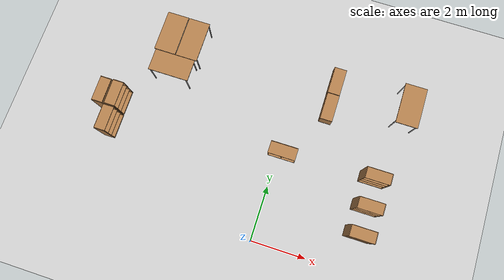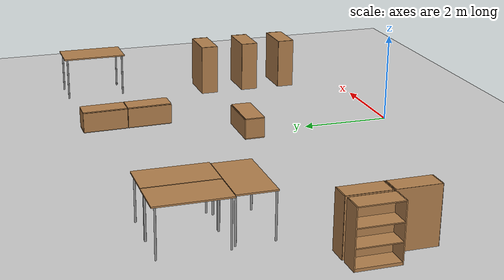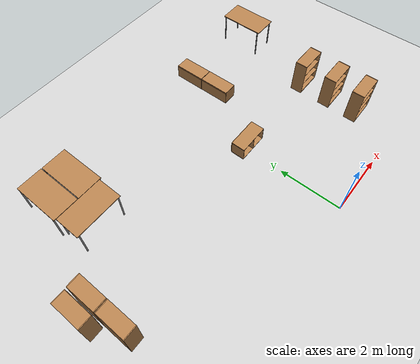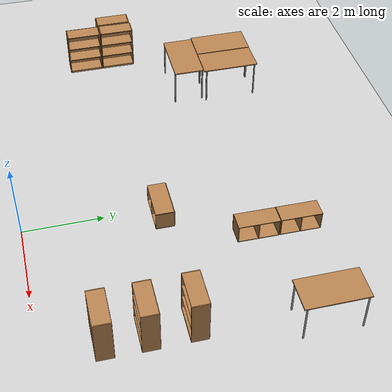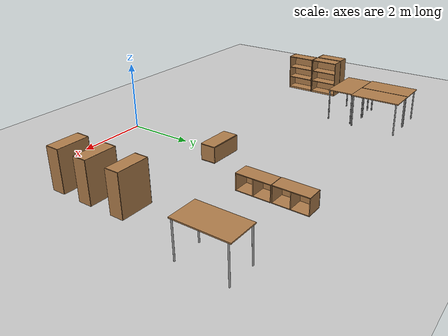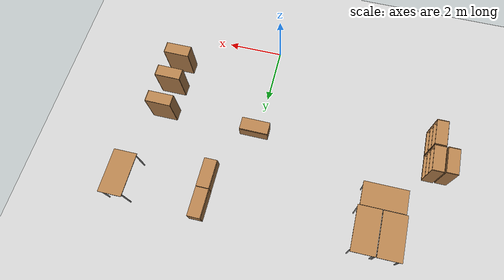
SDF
<sdf version="1.4">
 <world name="office">
  <model name="ground_plane">
   <static>1</static>
   <link name="link">
    <collision name="collision">
     <geometry><plane><normal>0 0 1</normal><size>100 100</size></plane></geometry>
     <surface><friction><ode><mu>100</mu><mu2>50</mu2></ode></friction></surface>
    </collision>
    <visual name="visual">
     <cast_shadows>0</cast_shadows>
     <geometry><plane><normal>0 0 1</normal><size>100 100</size></plane></geometry>
     <material>
      <script><uri>file://media/materials/scripts/gazebo.material</uri><name>Gazebo/Grey</name></script>
     </material>
    </visual>
    <velocity_decay><linear>0</linear><angular>0</angular></velocity_decay>
   </link>
  </model>
  <model name="cabinet_3">
   <static>1</static>
   <link name="cabinet_bottom_plate">
    <inertial>
     <pose>0 0 -1 0 -0 0</pose>
     <inertia><ixx>2.05</ixx><ixy>0</ixy><ixz>0</ixz><iyy>2.05</iyy><iyz>0</iyz><izz>2.05</izz></inertia>
     <mass>25</mass>
    </inertial>
    <collision name="cabinet_bottom_plate_geom">
     <pose>0 0 0.01 0 -0 0</pose>
     <geometry><box><size>0.45 0.45 0.02</size></box></geometry>
    </collision>
    <visual name="cabinet_bottom_plate_geom_visual">
     <pose>0 0 0.01 0 -0 0</pose>
     <geometry><box><size>0.45 0.45 0.02</size></box></geometry>
     <material>
      <script><uri>file://media/materials/scripts/gazebo.material</uri><name>Gazebo/Wood</name></script>
     </material>
    </visual>
    <collision name="cabinet_bottom_plate_geom_cabinet_back_plate">
     <pose>0.235 0 0.51 0 -0 0</pose>
     <geometry><box><size>0.02 0.45 1.02</size></box></geometry>
    </collision>
    <visual name="cabinet_bottom_plate_geom_cabinet_back_plate_visual">
     <pose>0.235 0 0.51 0 -0 0</pose>
     <geometry><box><size>0.02 0.45 1.02</size></box></geometry>
     <material>
      <script><uri>file://media/materials/scripts/gazebo.material</uri><name>Gazebo/Wood</name></script>
     </material>
    </visual>
    <collision name="cabinet_bottom_plate_geom_cabinet_left_plate">
     <pose>0 0.235 0.51 0 -0 0</pose>
     <geometry><box><size>0.45 0.02 1.02</size></box></geometry>
    </collision>
    <visual name="cabinet_bottom_plate_geom_cabinet_left_plate_visual">
     <pose>0 0.235 0.51 0 -0 0</pose>
     <geometry><box><size>0.45 0.02 1.02</size></box></geometry>
     <material>
      <script><uri>file://media/materials/scripts/gazebo.material</uri><name>Gazebo/Wood</name></script>
     </material>
    </visual>
    <collision name="cabinet_bottom_plate_geom_cabinet_middle_plate">
     <pose>0 0 0.51 0 -0 0</pose>
     <geometry><box><size>0.45 0.45 0.02</size></box></geometry>
    </collision>
    <visual name="cabinet_bottom_plate_geom_cabinet_middle_plate_visual">
     <pose>0 0 0.51 0 -0 0</pose>
     <geometry><box><size>0.45 0.45 0.02</size></box></geometry>
     <material>
      <script><uri>file://media/materials/scripts/gazebo.material</uri><name>Gazebo/Wood</name></script>
     </material>
    </visual>
    <collision name="cabinet_bottom_plate_geom_cabinet_right_plate">
     <pose>0 -0.235 0.51 0 -0 0</pose>
     <geometry><box><size>0.45 0.02 1.02</size></box></geometry>
    </collision>
    <visual name="cabinet_bottom_plate_geom_cabinet_right_plate_visual">
     <pose>0 -0.235 0.51 0 -0 0</pose>
     <geometry><box><size>0.45 0.02 1.02</size></box></geometry>
     <material>
      <script><uri>file://media/materials/scripts/gazebo.material</uri><name>Gazebo/Wood</name></script>
     </material>
    </visual>
    <collision name="cabinet_bottom_plate_geom_cabinet_top_plate">
     <pose>0 0 1.01 0 -0 0</pose>
     <geometry><box><size>0.45 0.45 0.02</size></box></geometry>
    </collision>
    <visual name="cabinet_bottom_plate_geom_cabinet_top_plate_visual">
     <pose>0 0 1.01 0 -0 0</pose>
     <geometry><box><size>0.45 0.45 0.02</size></box></geometry>
     <material>
      <script><uri>file://media/materials/scripts/gazebo.material</uri><name>Gazebo/Wood</name></script>
     </material>
    </visual>
    <velocity_decay><linear>0</linear><angular>0</angular></velocity_decay>
   </link>
   <pose>-0.367518 3.35954 0.24 1.56 5.55112e-17 1.5708</pose>
  </model>
  <model name="bookshelf_5">
   <static>1</static>
   <link name="link">
    <inertial><mass>1</mass></inertial>
    <collision name="back">
     <pose>0 0.005 0.6 0 -0 0</pose>
     <geometry><box><size>0.9 0.01 1.2</size></box></geometry>
    </collision>
    <visual name="visual1">
     <pose>0 0.005 0.6 0 -0 0</pose>
     <geometry><box><size>0.9 0.01 1.2</size></box></geometry>
     <material>
      <script><uri>file://media/materials/scripts/gazebo.material</uri><name>Gazebo/Wood</name></script>
     </material>
    </visual>
    <collision name="left_side">
     <pose>0.45 -0.195 0.6 0 -0 0</pose>
     <geometry><box><size>0.02 0.4 1.2</size></box></geometry>
    </collision>
    <visual name="visual2">
     <pose>0.45 -0.195 0.6 0 -0 0</pose>
     <geometry><box><size>0.02 0.4 1.2</size></box></geometry>
     <material>
      <script><uri>file://media/materials/scripts/gazebo.material</uri><name>Gazebo/Wood</name></script>
     </material>
    </visual>
    <collision name="right_side">
     <pose>-0.45 -0.195 0.6 0 -0 0</pose>
     <geometry><box><size>0.02 0.4 1.2</size></box></geometry>
    </collision>
    <visual name="visual3">
     <pose>-0.45 -0.195 0.6 0 -0 0</pose>
     <geometry><box><size>0.02 0.4 1.2</size></box></geometry>
     <material>
      <script><uri>file://media/materials/scripts/gazebo.material</uri><name>Gazebo/Wood</name></script>
     </material>
    </visual>
    <collision name="bottom">
     <pose>0 -0.195 0.03 0 -0 0</pose>
     <geometry><box><size>0.88 0.4 0.06</size></box></geometry>
    </collision>
    <visual name="visual4">
     <pose>0 -0.195 0.03 0 -0 0</pose>
     <geometry><box><size>0.88 0.4 0.06</size></box></geometry>
     <material>
      <script><uri>file://media/materials/scripts/gazebo.material</uri><name>Gazebo/Wood</name></script>
     </material>
    </visual>
    <collision name="top">
     <pose>0 -0.195 1.19 0 -0 0</pose>
     <geometry><box><size>0.88 0.4 0.02</size></box></geometry>
    </collision>
    <visual name="visual5">
     <pose>0 -0.195 1.19 0 -0 0</pose>
     <geometry><box><size>0.88 0.4 0.02</size></box></geometry>
     <material>
      <script><uri>file://media/materials/scripts/gazebo.material</uri><name>Gazebo/Wood</name></script>
     </material>
    </visual>
    <collision name="low_shelf">
     <pose>0 -0.195 0.43 0 -0 0</pose>
     <geometry><box><size>0.88 0.4 0.02</size></box></geometry>
    </collision>
    <visual name="visual6">
     <pose>0 -0.195 0.43 0 -0 0</pose>
     <geometry><box><size>0.88 0.4 0.02</size></box></geometry>
     <material>
      <script><uri>file://media/materials/scripts/gazebo.material</uri><name>Gazebo/Wood</name></script>
     </material>
    </visual>
    <collision name="high_shelf">
     <pose>0 -0.195 0.8 0 -0 0</pose>
     <geometry><box><size>0.88 0.4 0.02</size></box></geometry>
    </collision>
    <visual name="visual7">
     <pose>0 -0.195 0.8 0 -0 0</pose>
     <geometry><box><size>0.88 0.4 0.02</size></box></geometry>
     <material>
      <script><uri>file://media/materials/scripts/gazebo.material</uri><name>Gazebo/Wood</name></script>
     </material>
    </visual>
    <velocity_decay><linear>0</linear><angular>0</angular></velocity_decay>
   </link>
   <pose>-6.34031 2.45987 0 0 -0 1.5708</pose>
  </model>
  <model name="bookshelf_7">
   <static>1</static>
   <link name="link">
    <inertial><mass>1</mass></inertial>
    <collision name="back">
     <pose>0 0.005 0.6 0 -0 0</pose>
     <geometry><box><size>0.9 0.01 1.2</size></box></geometry>
    </collision>
    <visual name="visual1">
     <pose>0 0.005 0.6 0 -0 0</pose>
     <geometry><box><size>0.9 0.01 1.2</size></box></geometry>
     <material>
      <script><uri>file://media/materials/scripts/gazebo.material</uri><name>Gazebo/Wood</name></script>
     </material>
    </visual>
    <collision name="left_side">
     <pose>0.45 -0.195 0.6 0 -0 0</pose>
     <geometry><box><size>0.02 0.4 1.2</size></box></geometry>
    </collision>
    <visual name="visual2">
     <pose>0.45 -0.195 0.6 0 -0 0</pose>
     <geometry><box><size>0.02 0.4 1.2</size></box></geometry>
     <material>
      <script><uri>file://media/materials/scripts/gazebo.material</uri><name>Gazebo/Wood</name></script>
     </material>
    </visual>
    <collision name="right_side">
     <pose>-0.45 -0.195 0.6 0 -0 0</pose>
     <geometry><box><size>0.02 0.4 1.2</size></box></geometry>
    </collision>
    <visual name="visual3">
     <pose>-0.45 -0.195 0.6 0 -0 0</pose>
     <geometry><box><size>0.02 0.4 1.2</size></box></geometry>
     <material>
      <script><uri>file://media/materials/scripts/gazebo.material</uri><name>Gazebo/Wood</name></script>
     </material>
    </visual>
    <collision name="bottom">
     <pose>0 -0.195 0.03 0 -0 0</pose>
     <geometry><box><size>0.88 0.4 0.06</size></box></geometry>
    </collision>
    <visual name="visual4">
     <pose>0 -0.195 0.03 0 -0 0</pose>
     <geometry><box><size>0.88 0.4 0.06</size></box></geometry>
     <material>
      <script><uri>file://media/materials/scripts/gazebo.material</uri><name>Gazebo/Wood</name></script>
     </material>
    </visual>
    <collision name="top">
     <pose>0 -0.195 1.19 0 -0 0</pose>
     <geometry><box><size>0.88 0.4 0.02</size></box></geometry>
    </collision>
    <visual name="visual5">
     <pose>0 -0.195 1.19 0 -0 0</pose>
     <geometry><box><size>0.88 0.4 0.02</size></box></geometry>
     <material>
      <script><uri>file://media/materials/scripts/gazebo.material</uri><name>Gazebo/Wood</name></script>
     </material>
    </visual>
    <collision name="low_shelf">
     <pose>0 -0.195 0.43 0 -0 0</pose>
     <geometry><box><size>0.88 0.4 0.02</size></box></geometry>
    </collision>
    <visual name="visual6">
     <pose>0 -0.195 0.43 0 -0 0</pose>
     <geometry><box><size>0.88 0.4 0.02</size></box></geometry>
     <material>
      <script><uri>file://media/materials/scripts/gazebo.material</uri><name>Gazebo/Wood</name></script>
     </material>
    </visual>
    <collision name="high_shelf">
     <pose>0 -0.195 0.8 0 -0 0</pose>
     <geometry><box><size>0.88 0.4 0.02</size></box></geometry>
    </collision>
    <visual name="visual7">
     <pose>0 -0.195 0.8 0 -0 0</pose>
     <geometry><box><size>0.88 0.4 0.02</size></box></geometry>
     <material>
      <script><uri>file://media/materials/scripts/gazebo.material</uri><name>Gazebo/Wood</name></script>
     </material>
    </visual>
    <velocity_decay><linear>0</linear><angular>0</angular></velocity_decay>
   </link>
   <pose>-6.34296 3.39405 0 0 -0 1.5708</pose>
  </model>
  <model name="bookshelf_9">
   <static>1</static>
   <link name="link">
    <inertial><mass>1</mass></inertial>
    <collision name="back">
     <pose>0 0.005 0.6 0 -0 0</pose>
     <geometry><box><size>0.9 0.01 1.2</size></box></geometry>
    </collision>
    <visual name="visual1">
     <pose>0 0.005 0.6 0 -0 0</pose>
     <geometry><box><size>0.9 0.01 1.2</size></box></geometry>
     <material>
      <script><uri>file://media/materials/scripts/gazebo.material</uri><name>Gazebo/Wood</name></script>
     </material>
    </visual>
    <collision name="left_side">
     <pose>0.45 -0.195 0.6 0 -0 0</pose>
     <geometry><box><size>0.02 0.4 1.2</size></box></geometry>
    </collision>
    <visual name="visual2">
     <pose>0.45 -0.195 0.6 0 -0 0</pose>
     <geometry><box><size>0.02 0.4 1.2</size></box></geometry>
     <material>
      <script><uri>file://media/materials/scripts/gazebo.material</uri><name>Gazebo/Wood</name></script>
     </material>
    </visual>
    <collision name="right_side">
     <pose>-0.45 -0.195 0.6 0 -0 0</pose>
     <geometry><box><size>0.02 0.4 1.2</size></box></geometry>
    </collision>
    <visual name="visual3">
     <pose>-0.45 -0.195 0.6 0 -0 0</pose>
     <geometry><box><size>0.02 0.4 1.2</size></box></geometry>
     <material>
      <script><uri>file://media/materials/scripts/gazebo.material</uri><name>Gazebo/Wood</name></script>
     </material>
    </visual>
    <collision name="bottom">
     <pose>0 -0.195 0.03 0 -0 0</pose>
     <geometry><box><size>0.88 0.4 0.06</size></box></geometry>
    </collision>
    <visual name="visual4">
     <pose>0 -0.195 0.03 0 -0 0</pose>
     <geometry><box><size>0.88 0.4 0.06</size></box></geometry>
     <material>
      <script><uri>file://media/materials/scripts/gazebo.material</uri><name>Gazebo/Wood</name></script>
     </material>
    </visual>
    <collision name="top">
     <pose>0 -0.195 1.19 0 -0 0</pose>
     <geometry><box><size>0.88 0.4 0.02</size></box></geometry>
    </collision>
    <visual name="visual5">
     <pose>0 -0.195 1.19 0 -0 0</pose>
     <geometry><box><size>0.88 0.4 0.02</size></box></geometry>
     <material>
      <script><uri>file://media/materials/scripts/gazebo.material</uri><name>Gazebo/Wood</name></script>
     </material>
    </visual>
    <collision name="low_shelf">
     <pose>0 -0.195 0.43 0 -0 0</pose>
     <geometry><box><size>0.88 0.4 0.02</size></box></geometry>
    </collision>
    <visual name="visual6">
     <pose>0 -0.195 0.43 0 -0 0</pose>
     <geometry><box><size>0.88 0.4 0.02</size></box></geometry>
     <material>
      <script><uri>file://media/materials/scripts/gazebo.material</uri><name>Gazebo/Wood</name></script>
     </material>
    </visual>
    <collision name="high_shelf">
     <pose>0 -0.195 0.8 0 -0 0</pose>
     <geometry><box><size>0.88 0.4 0.02</size></box></geometry>
    </collision>
    <visual name="visual7">
     <pose>0 -0.195 0.8 0 -0 0</pose>
     <geometry><box><size>0.88 0.4 0.02</size></box></geometry>
     <material>
      <script><uri>file://media/materials/scripts/gazebo.material</uri><name>Gazebo/Wood</name></script>
     </material>
    </visual>
    <velocity_decay><linear>0</linear><angular>0</angular></velocity_decay>
   </link>
   <pose>3.50074 3.59039 0 0 -0 0</pose>
  </model>
  <model name="bookshelf_10">
   <static>1</static>
   <link name="link">
    <inertial><mass>1</mass></inertial>
    <collision name="back">
     <pose>0 0.005 0.6 0 -0 0</pose>
     <geometry><box><size>0.9 0.01 1.2</size></box></geometry>
    </collision>
    <visual name="visual1">
     <pose>0 0.005 0.6 0 -0 0</pose>
     <geometry><box><size>0.9 0.01 1.2</size></box></geometry>
     <material>
      <script><uri>file://media/materials/scripts/gazebo.material</uri><name>Gazebo/Wood</name></script>
     </material>
    </visual>
    <collision name="left_side">
     <pose>0.45 -0.195 0.6 0 -0 0</pose>
     <geometry><box><size>0.02 0.4 1.2</size></box></geometry>
    </collision>
    <visual name="visual2">
     <pose>0.45 -0.195 0.6 0 -0 0</pose>
     <geometry><box><size>0.02 0.4 1.2</size></box></geometry>
     <material>
      <script><uri>file://media/materials/scripts/gazebo.material</uri><name>Gazebo/Wood</name></script>
     </material>
    </visual>
    <collision name="right_side">
     <pose>-0.45 -0.195 0.6 0 -0 0</pose>
     <geometry><box><size>0.02 0.4 1.2</size></box></geometry>
    </collision>
    <visual name="visual3">
     <pose>-0.45 -0.195 0.6 0 -0 0</pose>
     <geometry><box><size>0.02 0.4 1.2</size></box></geometry>
     <material>
      <script><uri>file://media/materials/scripts/gazebo.material</uri><name>Gazebo/Wood</name></script>
     </material>
    </visual>
    <collision name="bottom">
     <pose>0 -0.195 0.03 0 -0 0</pose>
     <geometry><box><size>0.88 0.4 0.06</size></box></geometry>
    </collision>
    <visual name="visual4">
     <pose>0 -0.195 0.03 0 -0 0</pose>
     <geometry><box><size>0.88 0.4 0.06</size></box></geometry>
     <material>
      <script><uri>file://media/materials/scripts/gazebo.material</uri><name>Gazebo/Wood</name></script>
     </material>
    </visual>
    <collision name="top">
     <pose>0 -0.195 1.19 0 -0 0</pose>
     <geometry><box><size>0.88 0.4 0.02</size></box></geometry>
    </collision>
    <visual name="visual5">
     <pose>0 -0.195 1.19 0 -0 0</pose>
     <geometry><box><size>0.88 0.4 0.02</size></box></geometry>
     <material>
      <script><uri>file://media/materials/scripts/gazebo.material</uri><name>Gazebo/Wood</name></script>
     </material>
    </visual>
    <collision name="low_shelf">
     <pose>0 -0.195 0.43 0 -0 0</pose>
     <geometry><box><size>0.88 0.4 0.02</size></box></geometry>
    </collision>
    <visual name="visual6">
     <pose>0 -0.195 0.43 0 -0 0</pose>
     <geometry><box><size>0.88 0.4 0.02</size></box></geometry>
     <material>
      <script><uri>file://media/materials/scripts/gazebo.material</uri><name>Gazebo/Wood</name></script>
     </material>
    </visual>
    <collision name="high_shelf">
     <pose>0 -0.195 0.8 0 -0 0</pose>
     <geometry><box><size>0.88 0.4 0.02</size></box></geometry>
    </collision>
    <visual name="visual7">
     <pose>0 -0.195 0.8 0 -0 0</pose>
     <geometry><box><size>0.88 0.4 0.02</size></box></geometry>
     <material>
      <script><uri>file://media/materials/scripts/gazebo.material</uri><name>Gazebo/Wood</name></script>
     </material>
    </visual>
    <velocity_decay><linear>0</linear><angular>0</angular></velocity_decay>
   </link>
   <pose>3.50768 2.53773 0 0 -0 0</pose>
  </model>
  <model name="bookshelf_11">
   <static>1</static>
   <link name="link">
    <inertial><mass>1</mass></inertial>
    <collision name="back">
     <pose>0 0.005 0.6 0 -0 0</pose>
     <geometry><box><size>0.9 0.01 1.2</size></box></geometry>
    </collision>
    <visual name="visual1">
     <pose>0 0.005 0.6 0 -0 0</pose>
     <geometry><box><size>0.9 0.01 1.2</size></box></geometry>
     <material>
      <script><uri>file://media/materials/scripts/gazebo.material</uri><name>Gazebo/Wood</name></script>
     </material>
    </visual>
    <collision name="left_side">
     <pose>0.45 -0.195 0.6 0 -0 0</pose>
     <geometry><box><size>0.02 0.4 1.2</size></box></geometry>
    </collision>
    <visual name="visual2">
     <pose>0.45 -0.195 0.6 0 -0 0</pose>
     <geometry><box><size>0.02 0.4 1.2</size></box></geometry>
     <material>
      <script><uri>file://media/materials/scripts/gazebo.material</uri><name>Gazebo/Wood</name></script>
     </material>
    </visual>
    <collision name="right_side">
     <pose>-0.45 -0.195 0.6 0 -0 0</pose>
     <geometry><box><size>0.02 0.4 1.2</size></box></geometry>
    </collision>
    <visual name="visual3">
     <pose>-0.45 -0.195 0.6 0 -0 0</pose>
     <geometry><box><size>0.02 0.4 1.2</size></box></geometry>
     <material>
      <script><uri>file://media/materials/scripts/gazebo.material</uri><name>Gazebo/Wood</name></script>
     </material>
    </visual>
    <collision name="bottom">
     <pose>0 -0.195 0.03 0 -0 0</pose>
     <geometry><box><size>0.88 0.4 0.06</size></box></geometry>
    </collision>
    <visual name="visual4">
     <pose>0 -0.195 0.03 0 -0 0</pose>
     <geometry><box><size>0.88 0.4 0.06</size></box></geometry>
     <material>
      <script><uri>file://media/materials/scripts/gazebo.material</uri><name>Gazebo/Wood</name></script>
     </material>
    </visual>
    <collision name="top">
     <pose>0 -0.195 1.19 0 -0 0</pose>
     <geometry><box><size>0.88 0.4 0.02</size></box></geometry>
    </collision>
    <visual name="visual5">
     <pose>0 -0.195 1.19 0 -0 0</pose>
     <geometry><box><size>0.88 0.4 0.02</size></box></geometry>
     <material>
      <script><uri>file://media/materials/scripts/gazebo.material</uri><name>Gazebo/Wood</name></script>
     </material>
    </visual>
    <collision name="low_shelf">
     <pose>0 -0.195 0.43 0 -0 0</pose>
     <geometry><box><size>0.88 0.4 0.02</size></box></geometry>
    </collision>
    <visual name="visual6">
     <pose>0 -0.195 0.43 0 -0 0</pose>
     <geometry><box><size>0.88 0.4 0.02</size></box></geometry>
     <material>
      <script><uri>file://media/materials/scripts/gazebo.material</uri><name>Gazebo/Wood</name></script>
     </material>
    </visual>
    <collision name="high_shelf">
     <pose>0 -0.195 0.8 0 -0 0</pose>
     <geometry><box><size>0.88 0.4 0.02</size></box></geometry>
    </collision>
    <visual name="visual7">
     <pose>0 -0.195 0.8 0 -0 0</pose>
     <geometry><box><size>0.88 0.4 0.02</size></box></geometry>
     <material>
      <script><uri>file://media/materials/scripts/gazebo.material</uri><name>Gazebo/Wood</name></script>
     </material>
    </visual>
    <velocity_decay><linear>0</linear><angular>0</angular></velocity_decay>
   </link>
   <pose>3.49876 1.56425 0 0 -0 0</pose>
  </model>
  <model name="cabinet_6">
   <static>1</static>
   <link name="cabinet_bottom_plate">
    <inertial>
     <pose>0 0 -1 0 -0 0</pose>
     <inertia><ixx>2.05</ixx><ixy>0</ixy><ixz>0</ixz><iyy>2.05</iyy><iyz>0</iyz><izz>2.05</izz></inertia>
     <mass>25</mass>
    </inertial>
    <collision name="cabinet_bottom_plate_geom">
     <pose>0 0 0.01 0 -0 0</pose>
     <geometry><box><size>0.45 0.45 0.02</size></box></geometry>
    </collision>
    <visual name="cabinet_bottom_plate_geom_visual">
     <pose>0 0 0.01 0 -0 0</pose>
     <geometry><box><size>0.45 0.45 0.02</size></box></geometry>
     <material>
      <script><uri>file://media/materials/scripts/gazebo.material</uri><name>Gazebo/Wood</name></script>
     </material>
    </visual>
    <collision name="cabinet_bottom_plate_geom_cabinet_back_plate">
     <pose>0.235 0 0.51 0 -0 0</pose>
     <geometry><box><size>0.02 0.45 1.02</size></box></geometry>
    </collision>
    <visual name="cabinet_bottom_plate_geom_cabinet_back_plate_visual">
     <pose>0.235 0 0.51 0 -0 0</pose>
     <geometry><box><size>0.02 0.45 1.02</size></box></geometry>
     <material>
      <script><uri>file://media/materials/scripts/gazebo.material</uri><name>Gazebo/Wood</name></script>
     </material>
    </visual>
    <collision name="cabinet_bottom_plate_geom_cabinet_left_plate">
     <pose>0 0.235 0.51 0 -0 0</pose>
     <geometry><box><size>0.45 0.02 1.02</size></box></geometry>
    </collision>
    <visual name="cabinet_bottom_plate_geom_cabinet_left_plate_visual">
     <pose>0 0.235 0.51 0 -0 0</pose>
     <geometry><box><size>0.45 0.02 1.02</size></box></geometry>
     <material>
      <script><uri>file://media/materials/scripts/gazebo.material</uri><name>Gazebo/Wood</name></script>
     </material>
    </visual>
    <collision name="cabinet_bottom_plate_geom_cabinet_middle_plate">
     <pose>0 0 0.51 0 -0 0</pose>
     <geometry><box><size>0.45 0.45 0.02</size></box></geometry>
    </collision>
    <visual name="cabinet_bottom_plate_geom_cabinet_middle_plate_visual">
     <pose>0 0 0.51 0 -0 0</pose>
     <geometry><box><size>0.45 0.45 0.02</size></box></geometry>
     <material>
      <script><uri>file://media/materials/scripts/gazebo.material</uri><name>Gazebo/Wood</name></script>
     </material>
    </visual>
    <collision name="cabinet_bottom_plate_geom_cabinet_right_plate">
     <pose>0 -0.235 0.51 0 -0 0</pose>
     <geometry><box><size>0.45 0.02 1.02</size></box></geometry>
    </collision>
    <visual name="cabinet_bottom_plate_geom_cabinet_right_plate_visual">
     <pose>0 -0.235 0.51 0 -0 0</pose>
     <geometry><box><size>0.45 0.02 1.02</size></box></geometry>
     <material>
      <script><uri>file://media/materials/scripts/gazebo.material</uri><name>Gazebo/Wood</name></script>
     </material>
    </visual>
    <collision name="cabinet_bottom_plate_geom_cabinet_top_plate">
     <pose>0 0 1.01 0 -0 0</pose>
     <geometry><box><size>0.45 0.45 0.02</size></box></geometry>
    </collision>
    <visual name="cabinet_bottom_plate_geom_cabinet_top_plate_visual">
     <pose>0 0 1.01 0 -0 0</pose>
     <geometry><box><size>0.45 0.45 0.02</size></box></geometry>
     <material>
      <script><uri>file://media/materials/scripts/gazebo.material</uri><name>Gazebo/Wood</name></script>
     </material>
    </visual>
    <velocity_decay><linear>0</linear><angular>0</angular></velocity_decay>
   </link>
   <pose>1.29334 5.93491 0.26 -1.56 4.23516e-22 -3.14159</pose>
  </model>
  <model name="cabinet_7">
   <static>1</static>
   <link name="cabinet_bottom_plate">
    <inertial>
     <pose>0 0 -1 0 -0 0</pose>
     <inertia><ixx>2.05</ixx><ixy>0</ixy><ixz>0</ixz><iyy>2.05</iyy><iyz>0</iyz><izz>2.05</izz></inertia>
     <mass>25</mass>
    </inertial>
    <collision name="cabinet_bottom_plate_geom">
     <pose>0 0 0.01 0 -0 0</pose>
     <geometry><box><size>0.45 0.45 0.02</size></box></geometry>
    </collision>
    <visual name="cabinet_bottom_plate_geom_visual">
     <pose>0 0 0.01 0 -0 0</pose>
     <geometry><box><size>0.45 0.45 0.02</size></box></geometry>
     <material>
      <script><uri>file://media/materials/scripts/gazebo.material</uri><name>Gazebo/Wood</name></script>
     </material>
    </visual>
    <collision name="cabinet_bottom_plate_geom_cabinet_back_plate">
     <pose>0.235 0 0.51 0 -0 0</pose>
     <geometry><box><size>0.02 0.45 1.02</size></box></geometry>
    </collision>
    <visual name="cabinet_bottom_plate_geom_cabinet_back_plate_visual">
     <pose>0.235 0 0.51 0 -0 0</pose>
     <geometry><box><size>0.02 0.45 1.02</size></box></geometry>
     <material>
      <script><uri>file://media/materials/scripts/gazebo.material</uri><name>Gazebo/Wood</name></script>
     </material>
    </visual>
    <collision name="cabinet_bottom_plate_geom_cabinet_left_plate">
     <pose>0 0.235 0.51 0 -0 0</pose>
     <geometry><box><size>0.45 0.02 1.02</size></box></geometry>
    </collision>
    <visual name="cabinet_bottom_plate_geom_cabinet_left_plate_visual">
     <pose>0 0.235 0.51 0 -0 0</pose>
     <geometry><box><size>0.45 0.02 1.02</size></box></geometry>
     <material>
      <script><uri>file://media/materials/scripts/gazebo.material</uri><name>Gazebo/Wood</name></script>
     </material>
    </visual>
    <collision name="cabinet_bottom_plate_geom_cabinet_middle_plate">
     <pose>0 0 0.51 0 -0 0</pose>
     <geometry><box><size>0.45 0.45 0.02</size></box></geometry>
    </collision>
    <visual name="cabinet_bottom_plate_geom_cabinet_middle_plate_visual">
     <pose>0 0 0.51 0 -0 0</pose>
     <geometry><box><size>0.45 0.45 0.02</size></box></geometry>
     <material>
      <script><uri>file://media/materials/scripts/gazebo.material</uri><name>Gazebo/Wood</name></script>
     </material>
    </visual>
    <collision name="cabinet_bottom_plate_geom_cabinet_right_plate">
     <pose>0 -0.235 0.51 0 -0 0</pose>
     <geometry><box><size>0.45 0.02 1.02</size></box></geometry>
    </collision>
    <visual name="cabinet_bottom_plate_geom_cabinet_right_plate_visual">
     <pose>0 -0.235 0.51 0 -0 0</pose>
     <geometry><box><size>0.45 0.02 1.02</size></box></geometry>
     <material>
      <script><uri>file://media/materials/scripts/gazebo.material</uri><name>Gazebo/Wood</name></script>
     </material>
    </visual>
    <collision name="cabinet_bottom_plate_geom_cabinet_top_plate">
     <pose>0 0 1.01 0 -0 0</pose>
     <geometry><box><size>0.45 0.45 0.02</size></box></geometry>
    </collision>
    <visual name="cabinet_bottom_plate_geom_cabinet_top_plate_visual">
     <pose>0 0 1.01 0 -0 0</pose>
     <geometry><box><size>0.45 0.45 0.02</size></box></geometry>
     <material>
      <script><uri>file://media/materials/scripts/gazebo.material</uri><name>Gazebo/Wood</name></script>
     </material>
    </visual>
    <velocity_decay><linear>0</linear><angular>0</angular></velocity_decay>
   </link>
   <pose>1.28862 6.97136 0.25 -1.56 4.23516e-22 -3.14159</pose>
  </model>
  <model name="bookshelf_13">
   <static>1</static>
   <link name="link">
    <inertial><mass>1</mass></inertial>
    <collision name="back">
     <pose>0 0.005 0.6 0 -0 0</pose>
     <geometry><box><size>0.9 0.01 1.2</size></box></geometry>
    </collision>
    <visual name="visual1">
     <pose>0 0.005 0.6 0 -0 0</pose>
     <geometry><box><size>0.9 0.01 1.2</size></box></geometry>
     <material>
      <script><uri>file://media/materials/scripts/gazebo.material</uri><name>Gazebo/Wood</name></script>
     </material>
    </visual>
    <collision name="left_side">
     <pose>0.45 -0.195 0.6 0 -0 0</pose>
     <geometry><box><size>0.02 0.4 1.2</size></box></geometry>
    </collision>
    <visual name="visual2">
     <pose>0.45 -0.195 0.6 0 -0 0</pose>
     <geometry><box><size>0.02 0.4 1.2</size></box></geometry>
     <material>
      <script><uri>file://media/materials/scripts/gazebo.material</uri><name>Gazebo/Wood</name></script>
     </material>
    </visual>
    <collision name="right_side">
     <pose>-0.45 -0.195 0.6 0 -0 0</pose>
     <geometry><box><size>0.02 0.4 1.2</size></box></geometry>
    </collision>
    <visual name="visual3">
     <pose>-0.45 -0.195 0.6 0 -0 0</pose>
     <geometry><box><size>0.02 0.4 1.2</size></box></geometry>
     <material>
      <script><uri>file://media/materials/scripts/gazebo.material</uri><name>Gazebo/Wood</name></script>
     </material>
    </visual>
    <collision name="bottom">
     <pose>0 -0.195 0.03 0 -0 0</pose>
     <geometry><box><size>0.88 0.4 0.06</size></box></geometry>
    </collision>
    <visual name="visual4">
     <pose>0 -0.195 0.03 0 -0 0</pose>
     <geometry><box><size>0.88 0.4 0.06</size></box></geometry>
     <material>
      <script><uri>file://media/materials/scripts/gazebo.material</uri><name>Gazebo/Wood</name></script>
     </material>
    </visual>
    <collision name="top">
     <pose>0 -0.195 1.19 0 -0 0</pose>
     <geometry><box><size>0.88 0.4 0.02</size></box></geometry>
    </collision>
    <visual name="visual5">
     <pose>0 -0.195 1.19 0 -0 0</pose>
     <geometry><box><size>0.88 0.4 0.02</size></box></geometry>
     <material>
      <script><uri>file://media/materials/scripts/gazebo.material</uri><name>Gazebo/Wood</name></script>
     </material>
    </visual>
    <collision name="low_shelf">
     <pose>0 -0.195 0.43 0 -0 0</pose>
     <geometry><box><size>0.88 0.4 0.02</size></box></geometry>
    </collision>
    <visual name="visual6">
     <pose>0 -0.195 0.43 0 -0 0</pose>
     <geometry><box><size>0.88 0.4 0.02</size></box></geometry>
     <material>
      <script><uri>file://media/materials/scripts/gazebo.material</uri><name>Gazebo/Wood</name></script>
     </material>
    </visual>
    <collision name="high_shelf">
     <pose>0 -0.195 0.8 0 -0 0</pose>
     <geometry><box><size>0.88 0.4 0.02</size></box></geometry>
    </collision>
    <visual name="visual7">
     <pose>0 -0.195 0.8 0 -0 0</pose>
     <geometry><box><size>0.88 0.4 0.02</size></box></geometry>
     <material>
      <script><uri>file://media/materials/scripts/gazebo.material</uri><name>Gazebo/Wood</name></script>
     </material>
    </visual>
    <velocity_decay><linear>0</linear><angular>0</angular></velocity_decay>
   </link>
   <pose>-6.41358 3.37736 0 0 0 -1.5708</pose>
  </model>
  <model name="table_12">
   <static>1</static>
   <link name="link">
    <collision name="surface">
     <pose>0 0 1 0 -0 0</pose>
     <geometry><box><size>1.5 0.8 0.03</size></box></geometry>
    </collision>
    <visual name="visual1">
     <pose>0 0 1 0 -0 0</pose>
     <geometry><box><size>1.5 0.8 0.03</size></box></geometry>
     <material>
      <script><uri>file://media/materials/scripts/gazebo.material</uri><name>Gazebo/Wood</name></script>
     </material>
    </visual>
    <collision name="front_left_leg">
     <pose>0.68 0.38 0.5 0 -0 0</pose>
     <geometry><cylinder><radius>0.02</radius><length>1</length></cylinder></geometry>
    </collision>
    <visual name="front_left_leg">
     <pose>0.68 0.38 0.5 0 -0 0</pose>
     <geometry><cylinder><radius>0.02</radius><length>1</length></cylinder></geometry>
     <material>
      <script><uri>file://media/materials/scripts/gazebo.material</uri><name>Gazebo/Grey</name></script>
     </material>
    </visual>
    <collision name="front_right_leg">
     <pose>0.68 -0.38 0.5 0 -0 0</pose>
     <geometry><cylinder><radius>0.02</radius><length>1</length></cylinder></geometry>
    </collision>
    <visual name="front_right_leg">
     <pose>0.68 -0.38 0.5 0 -0 0</pose>
     <geometry><cylinder><radius>0.02</radius><length>1</length></cylinder></geometry>
     <material>
      <script><uri>file://media/materials/scripts/gazebo.material</uri><name>Gazebo/Grey</name></script>
     </material>
    </visual>
    <collision name="back_right_leg">
     <pose>-0.68 -0.38 0.5 0 -0 0</pose>
     <geometry><cylinder><radius>0.02</radius><length>1</length></cylinder></geometry>
    </collision>
    <visual name="back_right_leg">
     <pose>-0.68 -0.38 0.5 0 -0 0</pose>
     <geometry><cylinder><radius>0.02</radius><length>1</length></cylinder></geometry>
     <material>
      <script><uri>file://media/materials/scripts/gazebo.material</uri><name>Gazebo/Grey</name></script>
     </material>
    </visual>
    <collision name="back_left_leg">
     <pose>-0.68 0.38 0.5 0 -0 0</pose>
     <geometry><cylinder><radius>0.02</radius><length>1</length></cylinder></geometry>
    </collision>
    <visual name="back_left_leg">
     <pose>-0.68 0.38 0.5 0 -0 0</pose>
     <geometry><cylinder><radius>0.02</radius><length>1</length></cylinder></geometry>
     <material>
      <script><uri>file://media/materials/scripts/gazebo.material</uri><name>Gazebo/Grey</name></script>
     </material>
    </visual>
    <velocity_decay><linear>0</linear><angular>0</angular></velocity_decay>
   </link>
   <pose>4.01103 6.20197 0 0 0 -1.5708</pose>
  </model>
  <model name="table_16">
   <static>1</static>
   <link name="link">
    <collision name="surface">
     <pose>0 0 1 0 -0 0</pose>
     <geometry><box><size>1.5 0.8 0.03</size></box></geometry>
    </collision>
    <visual name="visual1">
     <pose>0 0 1 0 -0 0</pose>
     <geometry><box><size>1.5 0.8 0.03</size></box></geometry>
     <material>
      <script><uri>file://media/materials/scripts/gazebo.material</uri><name>Gazebo/Wood</name></script>
     </material>
    </visual>
    <collision name="front_left_leg">
     <pose>0.68 0.38 0.5 0 -0 0</pose>
     <geometry><cylinder><radius>0.02</radius><length>1</length></cylinder></geometry>
    </collision>
    <visual name="front_left_leg">
     <pose>0.68 0.38 0.5 0 -0 0</pose>
     <geometry><cylinder><radius>0.02</radius><length>1</length></cylinder></geometry>
     <material>
      <script><uri>file://media/materials/scripts/gazebo.material</uri><name>Gazebo/Grey</name></script>
     </material>
    </visual>
    <collision name="front_right_leg">
     <pose>0.68 -0.38 0.5 0 -0 0</pose>
     <geometry><cylinder><radius>0.02</radius><length>1</length></cylinder></geometry>
    </collision>
    <visual name="front_right_leg">
     <pose>0.68 -0.38 0.5 0 -0 0</pose>
     <geometry><cylinder><radius>0.02</radius><length>1</length></cylinder></geometry>
     <material>
      <script><uri>file://media/materials/scripts/gazebo.material</uri><name>Gazebo/Grey</name></script>
     </material>
    </visual>
    <collision name="back_right_leg">
     <pose>-0.68 -0.38 0.5 0 -0 0</pose>
     <geometry><cylinder><radius>0.02</radius><length>1</length></cylinder></geometry>
    </collision>
    <visual name="back_right_leg">
     <pose>-0.68 -0.38 0.5 0 -0 0</pose>
     <geometry><cylinder><radius>0.02</radius><length>1</length></cylinder></geometry>
     <material>
      <script><uri>file://media/materials/scripts/gazebo.material</uri><name>Gazebo/Grey</name></script>
     </material>
    </visual>
    <collision name="back_left_leg">
     <pose>-0.68 0.38 0.5 0 -0 0</pose>
     <geometry><cylinder><radius>0.02</radius><length>1</length></cylinder></geometry>
    </collision>
    <visual name="back_left_leg">
     <pose>-0.68 0.38 0.5 0 -0 0</pose>
     <geometry><cylinder><radius>0.02</radius><length>1</length></cylinder></geometry>
     <material>
      <script><uri>file://media/materials/scripts/gazebo.material</uri><name>Gazebo/Grey</name></script>
     </material>
    </visual>
    <velocity_decay><linear>0</linear><angular>0</angular></velocity_decay>
   </link>
   <pose>-4.21615 6.20368 0 0 0 -1.5708</pose>
  </model>
  <model name="table_17">
   <static>1</static>
   <link name="link">
    <collision name="surface">
     <pose>0 0 1 0 -0 0</pose>
     <geometry><box><size>1.5 0.8 0.03</size></box></geometry>
    </collision>
    <visual name="visual1">
     <pose>0 0 1 0 -0 0</pose>
     <geometry><box><size>1.5 0.8 0.03</size></box></geometry>
     <material>
      <script><uri>file://media/materials/scripts/gazebo.material</uri><name>Gazebo/Wood</name></script>
     </material>
    </visual>
    <collision name="front_left_leg">
     <pose>0.68 0.38 0.5 0 -0 0</pose>
     <geometry><cylinder><radius>0.02</radius><length>1</length></cylinder></geometry>
    </collision>
    <visual name="front_left_leg">
     <pose>0.68 0.38 0.5 0 -0 0</pose>
     <geometry><cylinder><radius>0.02</radius><length>1</length></cylinder></geometry>
     <material>
      <script><uri>file://media/materials/scripts/gazebo.material</uri><name>Gazebo/Grey</name></script>
     </material>
    </visual>
    <collision name="front_right_leg">
     <pose>0.68 -0.38 0.5 0 -0 0</pose>
     <geometry><cylinder><radius>0.02</radius><length>1</length></cylinder></geometry>
    </collision>
    <visual name="front_right_leg">
     <pose>0.68 -0.38 0.5 0 -0 0</pose>
     <geometry><cylinder><radius>0.02</radius><length>1</length></cylinder></geometry>
     <material>
      <script><uri>file://media/materials/scripts/gazebo.material</uri><name>Gazebo/Grey</name></script>
     </material>
    </visual>
    <collision name="back_right_leg">
     <pose>-0.68 -0.38 0.5 0 -0 0</pose>
     <geometry><cylinder><radius>0.02</radius><length>1</length></cylinder></geometry>
    </collision>
    <visual name="back_right_leg">
     <pose>-0.68 -0.38 0.5 0 -0 0</pose>
     <geometry><cylinder><radius>0.02</radius><length>1</length></cylinder></geometry>
     <material>
      <script><uri>file://media/materials/scripts/gazebo.material</uri><name>Gazebo/Grey</name></script>
     </material>
    </visual>
    <collision name="back_left_leg">
     <pose>-0.68 0.38 0.5 0 -0 0</pose>
     <geometry><cylinder><radius>0.02</radius><length>1</length></cylinder></geometry>
    </collision>
    <visual name="back_left_leg">
     <pose>-0.68 0.38 0.5 0 -0 0</pose>
     <geometry><cylinder><radius>0.02</radius><length>1</length></cylinder></geometry>
     <material>
      <script><uri>file://media/materials/scripts/gazebo.material</uri><name>Gazebo/Grey</name></script>
     </material>
    </visual>
    <velocity_decay><linear>0</linear><angular>0</angular></velocity_decay>
   </link>
   <pose>-4.62663 5.04471 0 0 -0 0</pose>
  </model>
  <model name="table_18">
   <static>1</static>
   <link name="link">
    <collision name="surface">
     <pose>0 0 1 0 -0 0</pose>
     <geometry><box><size>1.5 0.8 0.03</size></box></geometry>
    </collision>
    <visual name="visual1">
     <pose>0 0 1 0 -0 0</pose>
     <geometry><box><size>1.5 0.8 0.03</size></box></geometry>
     <material>
      <script><uri>file://media/materials/scripts/gazebo.material</uri><name>Gazebo/Wood</name></script>
     </material>
    </visual>
    <collision name="front_left_leg">
     <pose>0.68 0.38 0.5 0 -0 0</pose>
     <geometry><cylinder><radius>0.02</radius><length>1</length></cylinder></geometry>
    </collision>
    <visual name="front_left_leg">
     <pose>0.68 0.38 0.5 0 -0 0</pose>
     <geometry><cylinder><radius>0.02</radius><length>1</length></cylinder></geometry>
     <material>
      <script><uri>file://media/materials/scripts/gazebo.material</uri><name>Gazebo/Grey</name></script>
     </material>
    </visual>
    <collision name="front_right_leg">
     <pose>0.68 -0.38 0.5 0 -0 0</pose>
     <geometry><cylinder><radius>0.02</radius><length>1</length></cylinder></geometry>
    </collision>
    <visual name="front_right_leg">
     <pose>0.68 -0.38 0.5 0 -0 0</pose>
     <geometry><cylinder><radius>0.02</radius><length>1</length></cylinder></geometry>
     <material>
      <script><uri>file://media/materials/scripts/gazebo.material</uri><name>Gazebo/Grey</name></script>
     </material>
    </visual>
    <collision name="back_right_leg">
     <pose>-0.68 -0.38 0.5 0 -0 0</pose>
     <geometry><cylinder><radius>0.02</radius><length>1</length></cylinder></geometry>
    </collision>
    <visual name="back_right_leg">
     <pose>-0.68 -0.38 0.5 0 -0 0</pose>
     <geometry><cylinder><radius>0.02</radius><length>1</length></cylinder></geometry>
     <material>
      <script><uri>file://media/materials/scripts/gazebo.material</uri><name>Gazebo/Grey</name></script>
     </material>
    </visual>
    <collision name="back_left_leg">
     <pose>-0.68 0.38 0.5 0 -0 0</pose>
     <geometry><cylinder><radius>0.02</radius><length>1</length></cylinder></geometry>
    </collision>
    <visual name="back_left_leg">
     <pose>-0.68 0.38 0.5 0 -0 0</pose>
     <geometry><cylinder><radius>0.02</radius><length>1</length></cylinder></geometry>
     <material>
      <script><uri>file://media/materials/scripts/gazebo.material</uri><name>Gazebo/Grey</name></script>
     </material>
    </visual>
    <velocity_decay><linear>0</linear><angular>0</angular></velocity_decay>
   </link>
   <pose>-5.03979 6.20811 0 0 0 -1.5708</pose>
  </model>
 </world>
</sdf>
